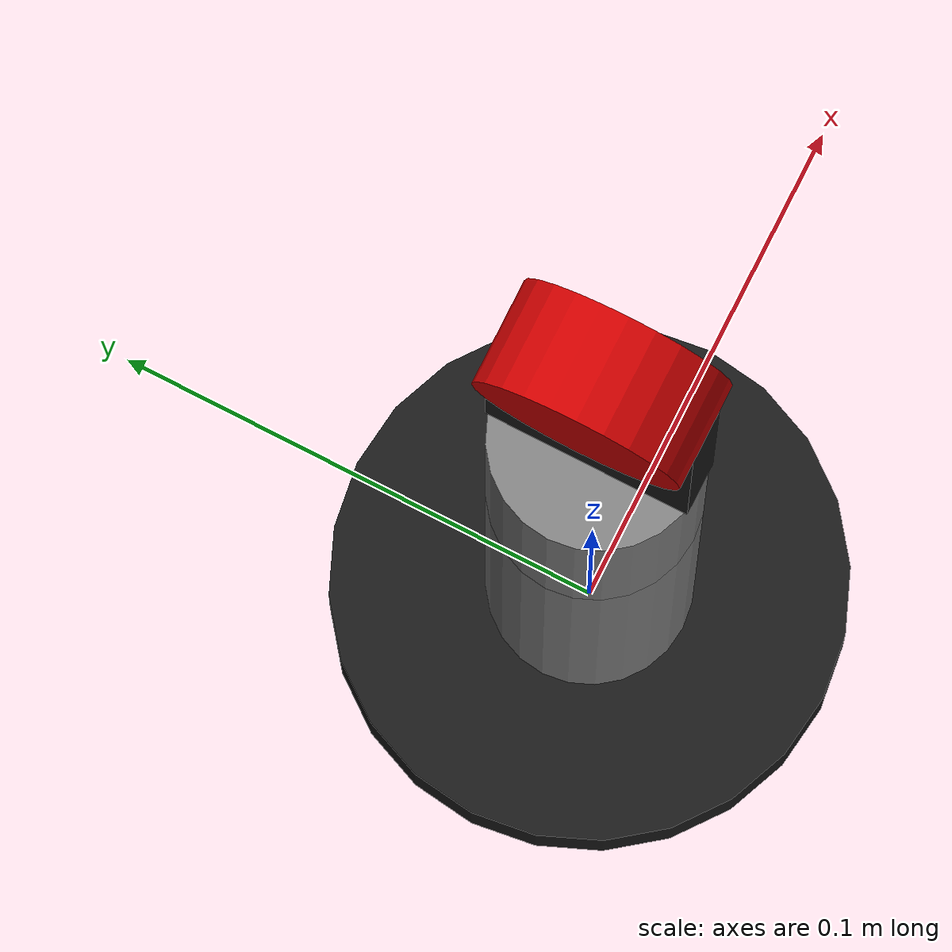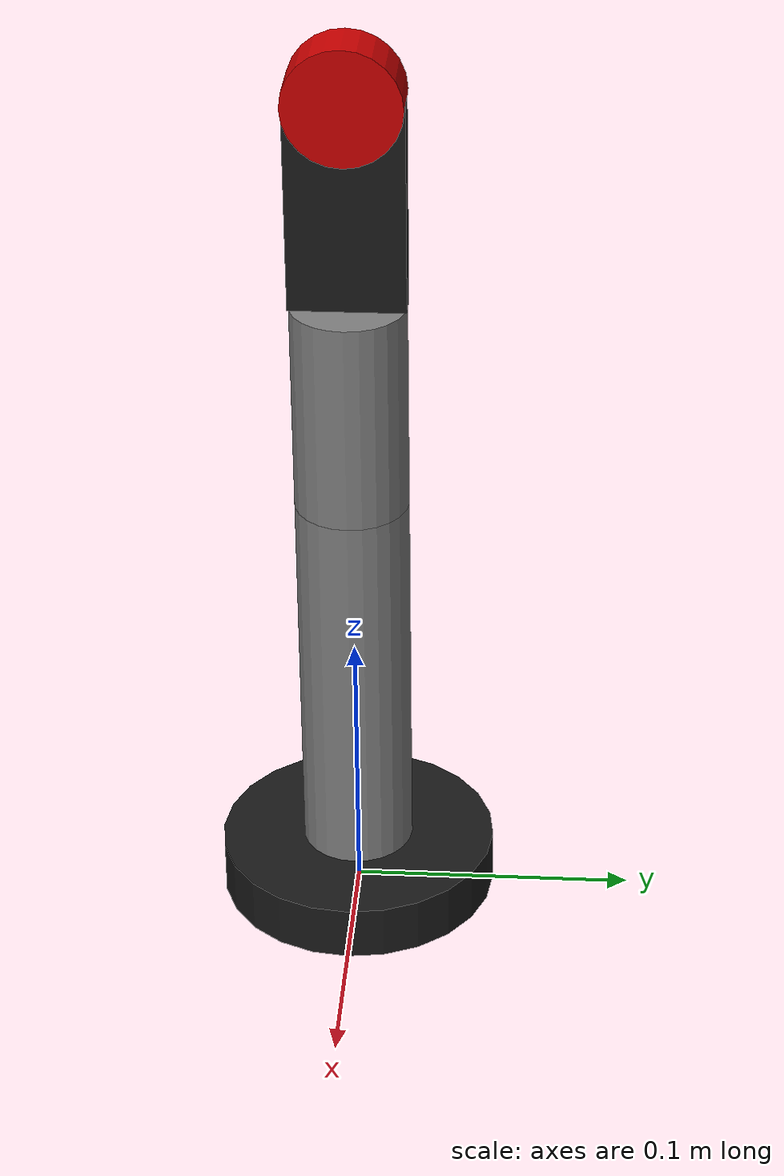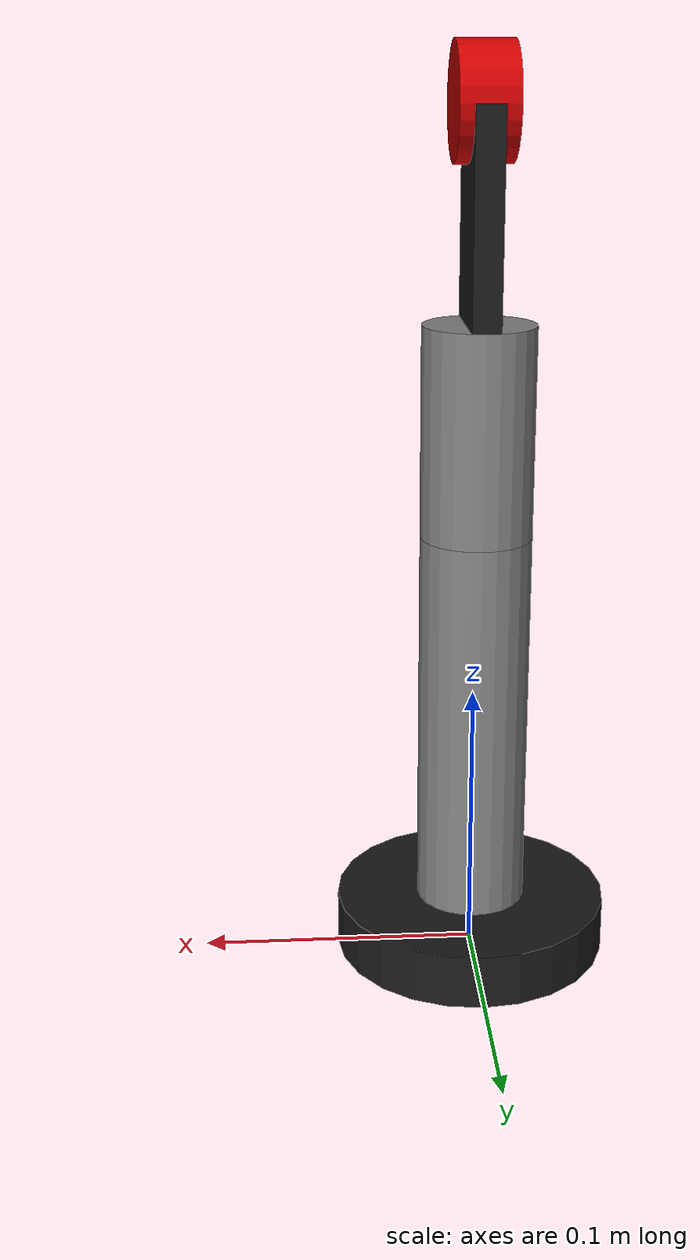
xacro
<?xml version="1.0"?>
<robot xmlns:xacro="http://www.ros.org/wiki/xacro" name="pan_tilt_turret">

  <xacro:property name="height_base_to_pan" value="0.16" />
  <xacro:property name="height_pan_to_tilt" value="0.075" />
  <xacro:property name="lidar_offset"       value="0.073" />

  <material name="grey">
    <color rgba="0.5 0.5 0.5 1"/>
  </material>
  <material name="black">
    <color rgba="0.1 0.1 0.1 1"/>
  </material>
  <material name="red">
    <color rgba="0.8 0.0 0.0 1"/>
  </material>

  <link name="base_link">
    <visual>
      <origin xyz="0 0 0.01" rpy="0 0 0"/>
      <geometry>
        <cylinder length="0.02" radius="0.05"/>
      </geometry>
      <material name="black"/>
    </visual>
  </link>

  <link name="link_1_post">
    <visual>
      <origin xyz="0 0 ${height_base_to_pan/2}" rpy="0 0 0"/>
      <geometry>
        <cylinder length="${height_base_to_pan}" radius="0.02"/>
      </geometry>
      <material name="grey"/>
    </visual>
  </link>

  <joint name="base_to_post" type="fixed">
    <parent link="base_link"/>
    <child link="link_1_post"/>
    <origin xyz="0 0 0"/>
  </joint>

  <joint name="pan_joint" type="revolute">
    <parent link="link_1_post"/>
    <child link="link_2_pan"/>
    <origin xyz="0 0 ${height_base_to_pan}" rpy="0 0 0"/>
    <axis xyz="0 0 1"/>
    <limit lower="-2.35" upper="2.35" effort="10" velocity="1.0"/>
  </joint>

  <link name="link_2_pan">
    <visual>
      <origin xyz="0 0 ${height_pan_to_tilt/2}" rpy="0 0 0"/>
      <geometry>
        <cylinder length="${height_pan_to_tilt}" radius="0.02"/>
      </geometry>
      <material name="grey"/>
    </visual>
  </link>

  <joint name="tilt_joint" type="revolute">
    <parent link="link_2_pan"/>
    <child link="link_3_tilt"/>
    <origin xyz="0 0 ${height_pan_to_tilt}" rpy="0 -1.5708 0"/>
    <axis xyz="0 -1 0"/>
    <limit lower="-1.57" upper="1.57" effort="10" velocity="1.0"/>
  </joint>

  <link name="link_3_tilt">
    <visual>
      <origin xyz="${lidar_offset/2} 0 0" rpy="0 0 0"/>
      <geometry>
        <box size="${lidar_offset} 0.04 0.01"/>
      </geometry>
      <material name="black"/>
    </visual>
  </link>

  <joint name="laser_joint" type="fixed">
    <parent link="link_3_tilt"/>
    <child link="laser_frame"/>
    <origin xyz="${lidar_offset} 0 0" rpy="0 1.5708 0"/>
  </joint>

  <link name="laser_frame">
    <visual>
      <origin xyz="0 0 0" rpy="0 1.57 0"/>
      <geometry>
        <cylinder length="0.02" radius="0.02"/>
      </geometry>
      <material name="red"/>
    </visual>
  </link>

</robot>
